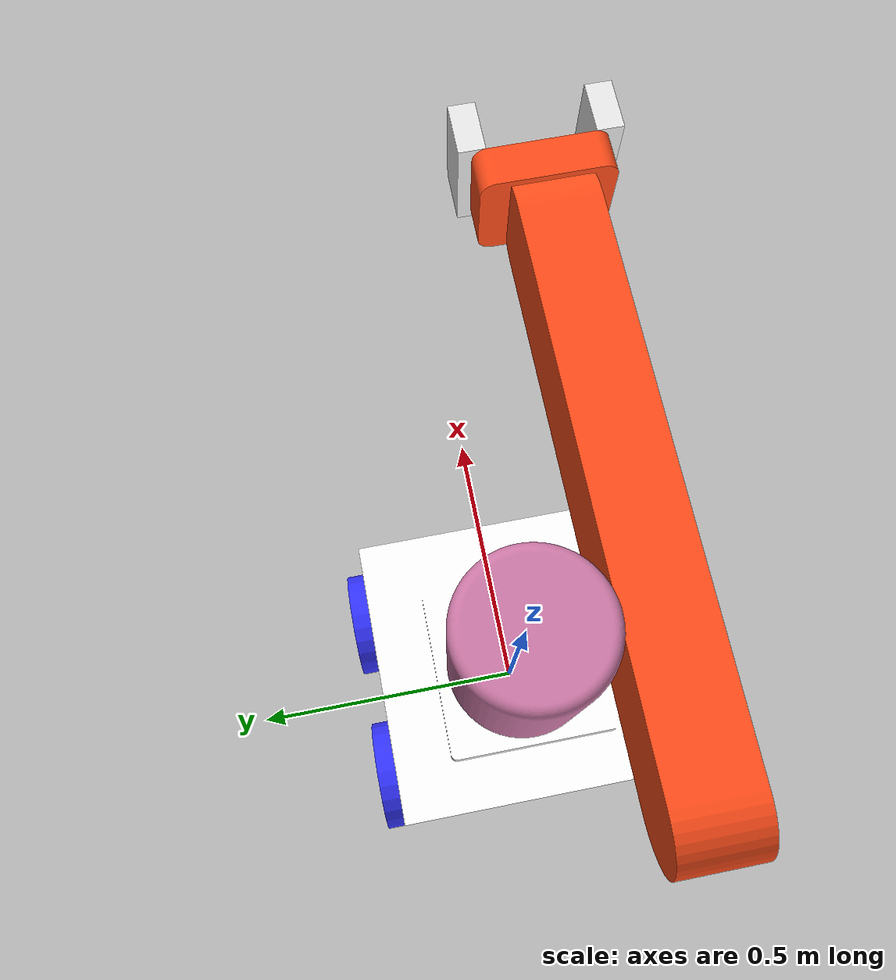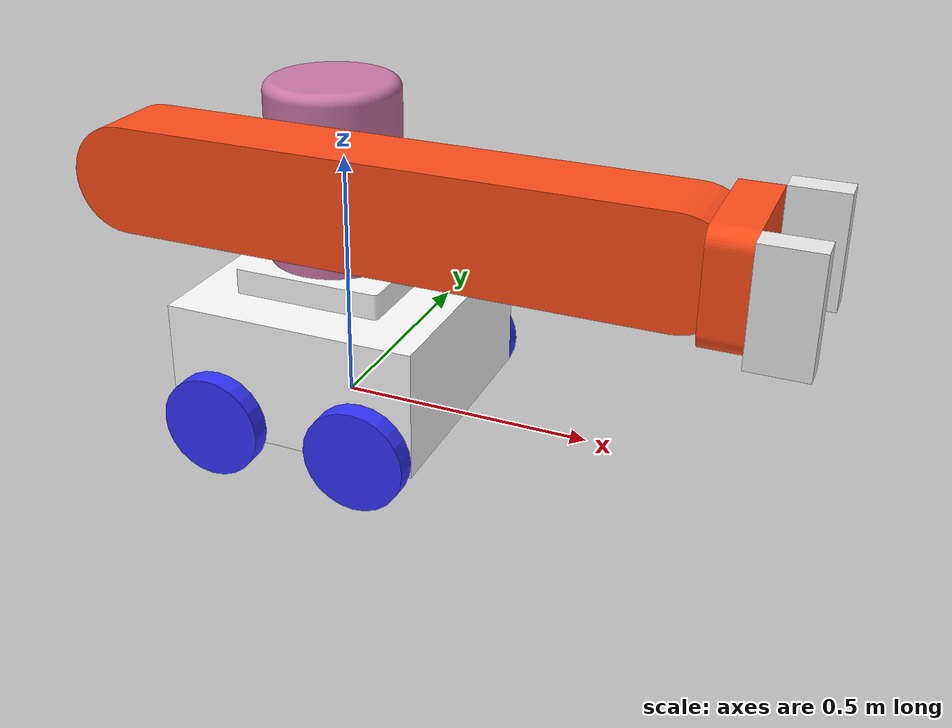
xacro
<?xml version="1.0"?>
<robot xmlns:xacro="http://www.ros.org/wiki/xacro"  name="robot">

   <xacro:include filename="robot_core.xacro" />
   <xacro:include filename="gazebo_control.xacro" />
   <xacro:include filename="inertial_macros.xacro" />
   <xacro:include filename="robot_control.urdf.xacro" />
   <xacro:include filename="lower_arm_transmission.xacro" />
   <xacro:include filename="gripper_hand_left_transmission.xacro" />
   <xacro:include filename="gripper_hand_right_transmission.xacro" />

   <ros2_control name = "GazeboSimSystem" type= "system">
      <hardware>
         <plugin>gazebo_ros2_control/GazeboSystem</plugin>
      </hardware>
      <xacro:lower_arm_transmission/>
      <xacro:gripper_hand_left_transmission/>
      <xacro:gripper_hand_right_transmission/>
   </ros2_control>
   <xacro:robot_controller/>
</robot>

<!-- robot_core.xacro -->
<robot xmlns:xacro="http://www.ros.org/wiki/xacro" >

    <xacro:include filename="inertial_macros.xacro" />
    <material name="white">
        <color rgba="1 1 1 1" />
    </material>

    <material name="orange">
        <color rgba="1 0.3 0.1 1"/>
    </material>

    <material name="blue">
        <color rgba="0.2 0.2 1 1"/>
    </material>

    <material name="black">
        <color rgba="0 0 0 1"/>
    </material>

    <material name="red">
        <color rgba="1 0 0 1"/>
    </material>

    <!-- BASE LINK -->

    <link name="base_link">

    </link>

    <joint name="chassis_joint" type="fixed">
        <parent link="base_link"/>
        <child link="chassis"/>
        <origin xyz="0 0 0"/>
        <dynamics damping="1" friction="1"/>
    </joint>

    <link name="chassis">
        <visual>
            <origin xyz="-0.25 0.25 0" rpy="0 0 0"/>
            <geometry>
                <mesh filename="file:///home/pondza/robofinal4_ws/src/articubot_one/description/car_body.dae"/>
            </geometry>
            <material name="white"/>
        </visual>
        <collision>
            <origin xyz="-0.25 0.25 0" rpy="0 0 0"/>
            <geometry>
                <mesh filename="file:///home/pondza/robofinal4_ws/src/articubot_one/description/car_body.dae"/>
            </geometry>
        </collision>
        <xacro:inertial_box mass="2" x="0.5" y="0.5" z="0.35">
            <origin xyz="0 0 0.175" rpy="0 0 0"/>
        </xacro:inertial_box>
    </link>

    <gazebo reference="chassis">
        <material>Gazebo/White</material>
        <mu1 value="0.1"/>
        <mu2 value="0.1"/>
    </gazebo>

    <!-- LEFT WHEEL -->

    <joint name="left_front_wheel_joint" type="continuous">
        <parent link="chassis"/>
        <child link="left_front_wheel"/>
        <origin xyz="0.15 0.27 0.03" rpy="-${pi/2} 0 0"/>
        <axis xyz="0 0 1"/>
        <dynamics damping="1" friction="1"/>
    </joint>

    <link name="left_front_wheel">
        <visual>
            <origin xyz="0 0 0" rpy="0 0 0"/>
            <geometry>
                <cylinder length="0.04" radius="0.1" />
            </geometry>
            <material name="blue"/>
        </visual>
        <collision>
            <geometry>
                <cylinder length="0.04" radius="0.1" />
            </geometry>
        </collision>
        <xacro:inertial_cylinder mass="0.1" length="0.04" radius="0.1">
            <origin xyz="0 0 0" rpy="0 0 0"/>
        </xacro:inertial_cylinder>
    </link>

    <gazebo reference="left_front_wheel">
        <material>Gazebo/Black</material>
        <mu1 value="0.1"/>
        <mu2 value="0.1"/>
    </gazebo>

    <joint name="left_back_wheel_joint" type="continuous">
        <parent link="chassis"/>
        <child link="left_back_wheel"/>
        <origin xyz="-0.15 0.27 0.03" rpy="-${pi/2} 0 0"/>
        <axis xyz="0 0 1"/>
        <dynamics damping="1" friction="1"/>
    </joint>

    <link name="left_back_wheel">
        <visual>
            <origin xyz="0 0 0" rpy="0 0 0"/>
            <geometry>
                <cylinder length="0.04" radius="0.1" />
            </geometry>
            <material name="blue"/>
        </visual>
        <collision>
            <geometry>
                <cylinder length="0.04" radius="0.1" />
            </geometry>
        </collision>
        <xacro:inertial_cylinder mass="0.1" length="0.04" radius="0.1">
            <origin xyz="0 0 0" rpy="0 0 0"/>
        </xacro:inertial_cylinder>
    </link>

    <gazebo reference="left_back_wheel">
        <material>Gazebo/Black</material>
        <mu1 value="0.1"/>
        <mu2 value="0.1"/>
    </gazebo>

     <!-- RIGHT WHEEL -->

    <joint name="right_front_wheel_joint" type="continuous">
        <parent link="chassis"/>
        <child link="right_front_wheel"/>
        <origin xyz="0.15 -0.27 0.03" rpy="${pi/2} 0 0"/>
        <axis xyz="0 0 -1"/>
        <dynamics damping="1" friction="1"/>
    </joint>

    <link name="right_front_wheel">
        <visual>
            <origin xyz="0 0 0" rpy="0 0 0"/>
            <geometry>
                <cylinder length="0.04" radius="0.1" />
            </geometry>
            <material name="blue"/>
        </visual>
        <collision>
            <geometry>
                <cylinder length="0.04" radius="0.1" />
            </geometry>
        </collision>
        <xacro:inertial_cylinder mass="0.1" length="0.04" radius="0.1">
            <origin xyz="0 0 0" rpy="0 0 0"/>
        </xacro:inertial_cylinder>
    </link>

    <gazebo reference="right_front_wheel">
        <material>Gazebo/Black</material>
        <mu1 value="0.1"/>
        <mu2 value="0.1"/>
    </gazebo>

    <joint name="right_back_wheel_joint" type="continuous">
        <parent link="chassis"/>
        <child link="right_back_wheel"/>
        <origin xyz="-0.15 -0.27 0.03" rpy="${pi/2} 0 0"/>
        <axis xyz="0 0 -1"/>
        <dynamics damping="1" friction="1"/>
    </joint>

    <link name="right_back_wheel">
        <visual>
            <origin xyz="0 0 0" rpy="0 0 0"/>
            <geometry>
                <cylinder length="0.04" radius="0.1" />
            </geometry>
            <material name="blue"/>
        </visual>
        <collision>
            <origin xyz="0 0 0" rpy="0 0 0"/>
            <geometry>
                <cylinder length="0.04" radius="0.1" />
            </geometry>
        </collision>
        <xacro:inertial_cylinder mass="0.1" length="0.04" radius="0.1">
            <origin xyz="0 0 0" rpy="0 0 0"/>
        </xacro:inertial_cylinder>
    </link>

    <gazebo reference="right_back_wheel">
        <material>Gazebo/Black</material>
        <mu1 value="0.1"/>
        <mu2 value="0.1"/>
    </gazebo>

    <!-- Robot Arm  -->

     <joint name="robot_base_joint" type="fixed">
        <parent link="base_link"/>
        <child link="robot_base"/>
        <origin xyz="-0.05 0 0.3" rpy="0 0 0"/>
        <axis xyz="0 0 0"/>
        <dynamics damping="1" friction="1"/>
    </joint>

    <link name="robot_base">
        <visual>
            <origin xyz="-0.1 0.13 0" rpy="0 0 0"/>
            <geometry>
                <mesh filename="file:///home/pondza/robofinal4_ws/src/articubot_one/description/robot_base2.dae"/>
            </geometry>
        </visual>
        <collision>
            <origin xyz="-0.1 0.13 0" rpy="0 0 0"/>
            <geometry>
                <mesh filename="file:///home/pondza/robofinal4_ws/src/articubot_one/description/robot_base2.dae"/>
            </geometry>
        </collision>
        <xacro:inertial_cylinder mass="0.5" length="0.5" radius="0.1">
            <origin xyz="0 0 0" rpy="0 0 0"/>
        </xacro:inertial_cylinder>
    </link>

   <joint name="lower_arm_joint" type="revolute">
        <parent link="chassis"/>
        <child link="lower_arm"/>
        <origin xyz="0 0 0.5" rpy="0 0 0"/>
        <axis xyz="0 1 0"/>
        <limit lower="-0.37" upper="0.37" effort="0.5" velocity="0.0" />
        <dynamics damping="1" friction="1"/>
    </joint>

    <link name="lower_arm">
        <visual>
            <origin xyz="-0.4 -0.28 -0.1" rpy="0 0 0"/>
            <geometry>
                <mesh filename="file:///home/pondza/robofinal4_ws/src/articubot_one/description/arm_5.dae"/>
            </geometry>
            <material name="orange"/>
        </visual>
        <collision>
            <origin xyz="-0.4 -0.28 -0.1" rpy="0 0 0"/>
            <geometry>
                <mesh filename="file:///home/pondza/robofinal4_ws/src/articubot_one/description/arm_5.dae"/>
            </geometry>
        </collision>
        <xacro:inertial_cylinder mass="0.01" length="1" radius="0.075">
            <origin xyz="0.2 -0.175 0" rpy="0 ${pi/2} 0"/>
        </xacro:inertial_cylinder>
    </link>

    <gazebo reference="lower_arm">
        <material>Gazebo/White</material>
        <mu1 value="0.1"/>
        <mu2 value="0.1"/>
    </gazebo>

    <!-- Gripper  -->

    <joint name="gripper_base_joint" type="fixed">
        <parent link="lower_arm"/>
        <child link="gripper_base"/>
        <origin xyz="0 0 0" rpy="0 0 0"/>
        <axis xyz="1 0 0"/>
        <dynamics damping="1" friction="1"/>
    </joint>

    <link name="gripper_base">
        <visual>
            <origin xyz="0.75 -0.075 0.1" rpy="${pi/2} ${pi/2} 0"/>
            <geometry>
                <mesh filename="file:///home/pondza/robofinal4_ws/src/articubot_one/description/gripper_base.dae"/>
            </geometry>
            <material name="orange"/>
        </visual>
        <collision>
            <origin xyz="0.75 -0.075 0.1" rpy="${pi/2} ${pi/2} 0"/>
            <geometry>
                <mesh filename="file:///home/pondza/robofinal4_ws/src/articubot_one/description/gripper_base.dae"/>
            </geometry>
        </collision>
        <xacro:inertial_box mass="0.1" x="0.1" y="0.1" z="0.1">
            <origin xyz="0 0 0" rpy="0 0 0"/>
        </xacro:inertial_box>
    </link>

    <joint name="gripper_hand_left_joint" type="prismatic">
        <parent link="gripper_base"/>
        <child link="gripper_left_arm"/>
        <origin xyz="0 0 0" rpy="0 0 0"/>
        <axis xyz="0 1 0"/>
        <limit lower="-0.1" upper="0.1" effort="0.5" velocity="0.1" />
        <dynamics damping="1" friction="1"/>
    </joint>

    <link name="gripper_left_arm">
        <visual>
            <origin xyz="0.875 -0.075 0" rpy="${pi/2} ${pi/2} 0"/>
            <geometry>
                <box size="0.2 0.1 0.05"/>
            </geometry>
        </visual>
        <collision>
            <origin xyz="0.875 -0.075 0" rpy="${pi/2} ${pi/2} 0"/>
            <geometry>
                <box size="0.2 0.1 0.05"/>
            </geometry>
        </collision>
        <xacro:inertial_box mass="0.1" x="0.1" y="0.1" z="0.1">
            <origin xyz="0 0 0" rpy="0 0 0"/>
        </xacro:inertial_box>
    </link>

    <gazebo reference="gripper_left_arm">
        <material>Gazebo/White</material>
        <mu1 value="0.1"/>
        <mu2 value="0.1"/>
    </gazebo>

    <joint name="gripper_hand_right_joint" type="prismatic">
        <parent link="gripper_base"/>
        <child link="gripper_right_arm"/>
        <origin xyz="0 0 0" rpy="0 0 0"/>
        <axis xyz="0 1 0"/>
        <limit lower="-0.1" upper="0.1" effort="0.5" velocity="0.1" />
        <dynamics damping="1" friction="1"/>
    </joint>

    <link name="gripper_right_arm">
        <visual>
            <origin xyz="0.875 -0.325 0" rpy="${pi/2} ${pi/2} 0"/>
            <geometry>
                <box size="0.2 0.1 0.05"/>
            </geometry>
        </visual>
        <collision>
            <origin xyz="0.875 -0.325 0" rpy="${pi/2} ${pi/2} 0"/>
            <geometry>
                <box size="0.2 0.1 0.05"/>
            </geometry>
        </collision>
        <xacro:inertial_box mass="0.1" x="0.1" y="0.1" z="0.1">
            <origin xyz="0 0 0" rpy="0 0 0"/>
        </xacro:inertial_box>
    </link>

    <gazebo reference="gripper_right_arm">
        <material>Gazebo/White</material>
        <mu1 value="0.1"/>
        <mu2 value="0.1"/>
    </gazebo>

    <!-- LiDAR -->

</robot>
